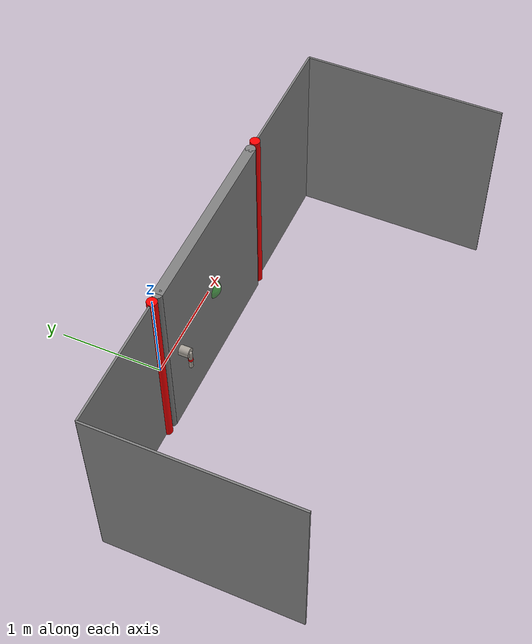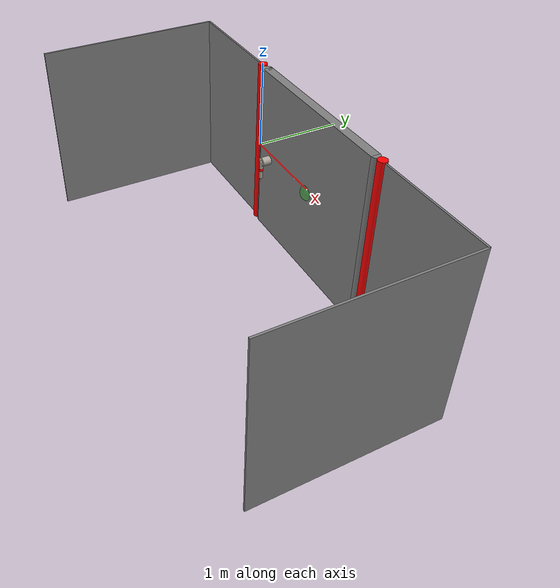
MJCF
<?xml version="1.0" encoding="utf-8"?>
<!-- from https://github.com/vikashplus/mj_envs/tree/master/mj_envs/hand_manipulation_suite/assets -->
<!-- Information about door can be found in this paper: https://arxiv.org/pdf/1709.10087.pdf -->

<mujoco model="door">
  <asset>
    <texture file="../textures/wood.png" type="cube" name="wood" />
    <texture file="../textures/foil.png" type="cube" name="foil" />
    <material name="MatFoil" texture="foil" specular="1" shininess="0.3" rgba="0.9 0.9 0.9 1" />
    <material name="MatWood" texture="wood" texrepeat="3 3" specular="0.4" shininess="0.1" />
  </asset>
  <default>
    <default class="viz">
      <geom contype="0" conaffinity="0" group="1" />
    </default>
    <default class="coll">
      <geom group="0" />
    </default>
    <default class="site">
      <geom group="2" />
    </default>
  </default>
    <worldbody>
      <body>
      <body name="collision">
        <body name="frame" pos="0 0 0" quat="1 0 0 0">
            <inertial pos="1.0 0 0" quat="0.5 0.5 0.5 0.5" mass="7.85398" diaginertia="0.923301 0.764585 0.168533" />
            <geom size="0.05 1." pos="0.0 0 0" type="cylinder" rgba="1 0 0 1" class="coll" name="l_frame"/>
            <geom size="0.05 1." pos="0.0 0 0" type="cylinder" material="MatWood" rgba="1 0 0 1" class="viz"/>
            <geom size="0.05 1." pos="2.1 0 0" type="cylinder" rgba="1 0 0 1" class="coll" name="r_frame"/>
            <geom size="0.05 1." pos="2.1 0 0" type="cylinder" material="MatWood" rgba="1 0 0 1" class="viz" />
            <site name="door_center" pos="1.05 0.0 0.0" size="0.025" class="site" rgba="0 0 1 0"/>
            <site name="goal"        pos="1.05 0.0 0.0" size="0.1" class="site" rgba="0 1 0 0.3"/>
            <body name="door" pos="1.05 0 0">
                <inertial pos="0.0296816 -0.00152345 0" quat="0.701072 0 0 0.713091" mass="0.1" diaginertia="0.0913751 0.0521615 0.043714" />
                <joint name="door_hinge" pos="1.05 0 0" axis="0 0 1" range="0.0 4.7" damping="0.001" frictionloss=".001" limited="true"/>
                <geom size="0.95 0.05 .99" type="box" friction="1 1 1" class="coll" name="door_box"/>
                <geom size="0.95 0.05 .99" type="box" friction="1 1 1" material="MatWood" class="viz"/>
                <geom size="0.05      .99" pos="0.95 0 0" type="cylinder"  class="coll" name="door_r_cyl"/>
                <geom size="0.05      .99" pos="0.95 0 0" type="cylinder" material="MatWood" class="viz" />
                <geom size="0.05      .99" pos="-0.95 0 0" type="cylinder"  class="coll" name="door_l_cyl" />
                <geom size="0.05      .99" pos="-0.95 0 0" type="cylinder" material="MatWood" class="viz" />
                <body name="latch" pos="-0.75 0 -0.025">
                    <inertial pos="-0.017762 0.0138544 0" quat="0.365653 0.605347 -0.36522 0.605365" mass="0.1" diaginertia="0.0483771 0.0410001 0.0111013" />
                    <geom size="0.05 0.15" quat="0.707388 0.706825 0 0" type="cylinder" material="MatFoil" class="viz" />
                    <geom size="0.02 0.1" pos="0 -0.15 -0.1" quat="1 0 0 0" type="capsule" material="MatFoil" class="viz"/>
                    <geom size="0.05 0.15" quat="0.707388 0.706825 0 0" type="cylinder" class="coll" name="handle_base"/>
                    <geom size="0.02 0.1" pos="0 -0.15 -0.1" quat="1 0 0 0" type="capsule" class="coll" name="handle"/>
                    <site name="door_handle" pos="0 -0.15 -0.1" size="0.025" class="site" rgba="1 0 0 1"/>
                </body>
            </body>
        <geom size="0.65 0.01 .99" pos="-0.65 0 0" type="box" friction="1 1 1" class="coll" name="wall_g0"/>
        <geom size="0.65 0.01 .99" pos="-0.65 0 0" type="box" friction="1 1 1" material="MatWood" class="viz"/>

        <geom size="0.65 0.01 .99" pos="2.75 0 0" type="box" friction="1 1 1" class="coll" name="wall_g1"/>
        <geom size="0.65 0.01 .99" pos="2.75 0 0" type="box" friction="1 1 1" material="MatWood" class="viz"/>

        <geom size="1.0  0.01 .99" pos="-1.3 -1.0 0" quat="0 0.707 0.707 0" type="box" friction="1 1 1" class="coll" name="wall_g2"/>
        <geom size="1.0  0.01 .99" pos="-1.3 -1.0 0" quat="0 0.707 0.707 0" type="box" friction="1 1 1" material="MatWood" class="viz"/>

        <geom size="1.0  0.01 .99" pos="3.4 -1.0 0" quat="0 0.707 0.707 0" type="box" friction="1 1 1" class="coll" name="wall_g3"/>
        <geom size="1.0  0.01 .99" pos="3.4 -1.0 0" quat="0 0.707 0.707 0" type="box" friction="1 1 1" material="MatWood" class="viz"/>
        </body>
      </body>
      </body>
    </worldbody>
</mujoco>
